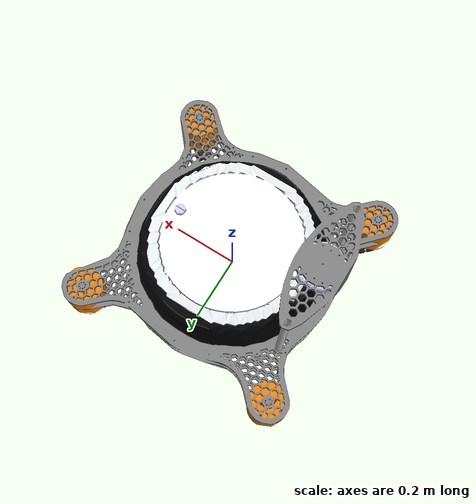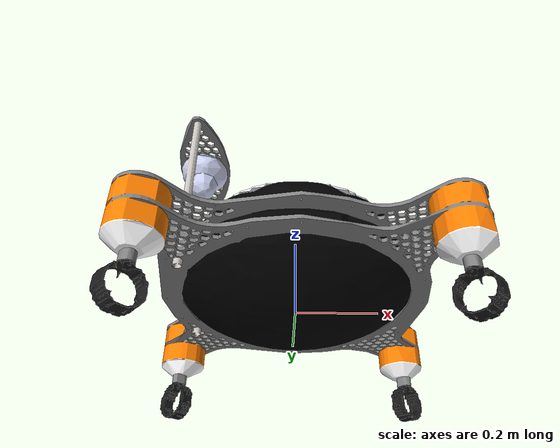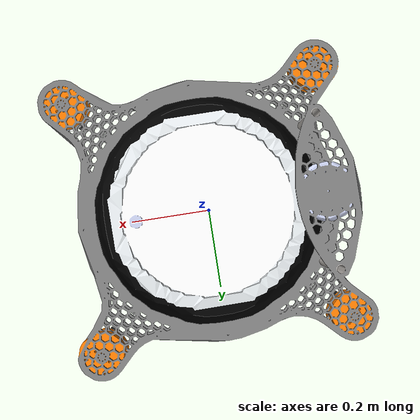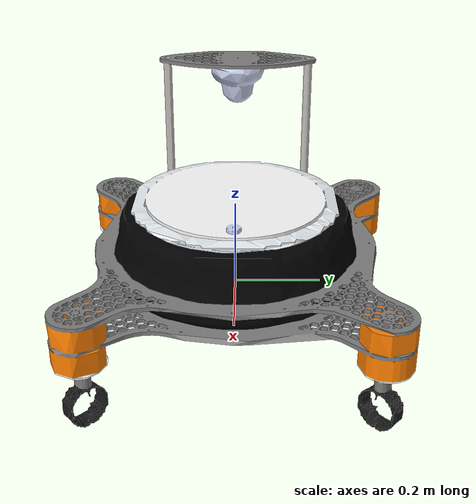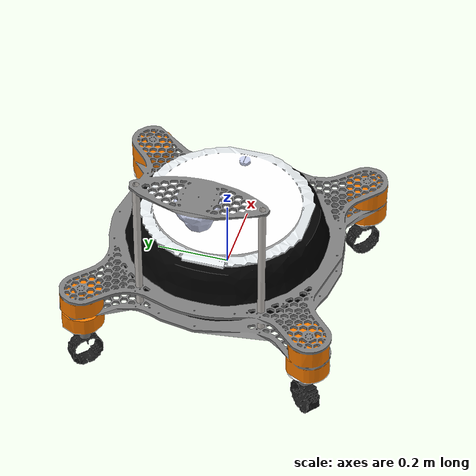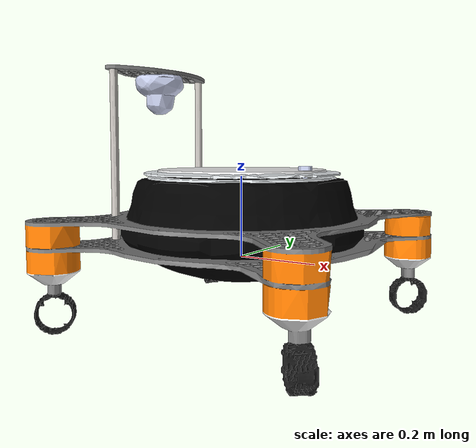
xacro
<?xml version="1.0"?>
<!-- Revolute-Revolute Manipulator -->
<robot name="h2omni" xmlns:xacro="http://www.ros.org/wiki/xacro">

    <xacro:macro name="h2omni" params="suffix">

        <!-- Constants for robot dimensions -->
        <xacro:property name="PI" value="3.1415926535897931"/>
        <!-- arbitrary value for mass -->
        <xacro:property name="mass" value="20" />
        <xacro:property name="height" value="0.8" />
        <xacro:property name="width" value="0.8" />
        <!-- Import all Gazebo-customization elements, including Gazebo colors -->
        <xacro:include filename="$(find h2omni_description)/urdf/h2omni.gazebo" />
        <!-- Used for fixing robot to Gazebo 'base_link' -->

        <link name="h2omni_${suffix}">
            <collision>
                <origin xyz="0 0 0" rpy="0 0 0"/>
                <geometry>
                    <box size="${width} ${width} ${height}"/>
                </geometry>
            </collision>
            <visual>
                <origin xyz="0 0 0" rpy="0 0 0"/>
                <geometry>
                    <mesh filename="package://h2omni_description/meshes/H3O_Omni_simplified.dae"/>
                </geometry>
            </visual>
            <inertial>
                <mass value="${mass}" />
                <origin xyz="0 0 0" rpy="0 0 0"/>
                <inertia ixx="10" ixy="0" ixz="0" iyy="10" iyz="0" izz="10" />
            </inertial>
        </link>
        <gazebo>
            <plugin name='uuv_gazebo_plugins' filename='libuuv_underwater_object_ros_plugin.so'>
                <namespace>hydrodynamics</namespace>
                <fluid_density>997</fluid_density>
                <flow_velocity_topic>current_velocity</flow_velocity_topic>
                <debug>0</debug>
                <link name='h2omni_${suffix}'>
                    <neutrally_buoyant>0</neutrally_buoyant>
                    <volume>1.83826</volume>
                    <box>
                    <width>1.5</width>
                    <length>2.6</length>
                    <height>1.6</height>
                    </box>
                    <center_of_buoyancy>0.0 0.0 0.3</center_of_buoyancy>
                    <hydrodynamic_model>
                    <type>fossen</type>
                    <added_mass>779.79 -6.8773 -103.32 8.5426 -165.54 -7.8033 -6.8773 1222 51.29 409.44 -5.8488 62.726 -103.32 51.29 3659.9 6.1112 -386.42 10.774 8.5426 409.44 6.1112 534.9 -10.027 21.019 -165.54 -5.8488 -386.42 -10.027 842.69 -1.1162 -7.8033 62.726 10.775 21.019 -1.1162 224.32</added_mass>
                    <linear_damping>-74.82 -69.48 -728.4 -268.8 -309.77 -105</linear_damping>
                    <quadratic_damping>-748.22 -992.53 -1821.01 -672 -774.44 -523.27</quadratic_damping>
                    </hydrodynamic_model>
                </link>
                <robotNamespace>/h2omni_1/</robotNamespace>
            </plugin>
        </gazebo>

    </xacro:macro>

    <xacro:h2omni suffix="1"></xacro:h2omni>
</robot>
